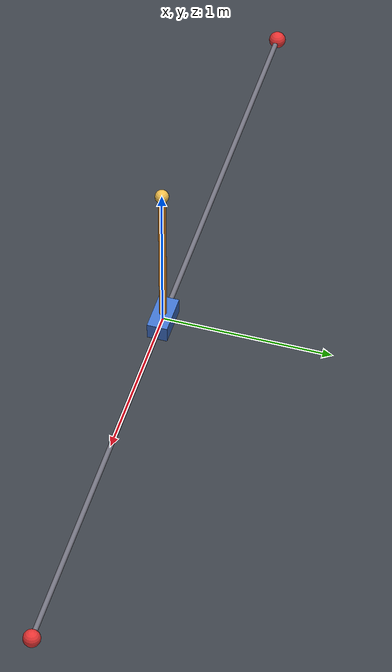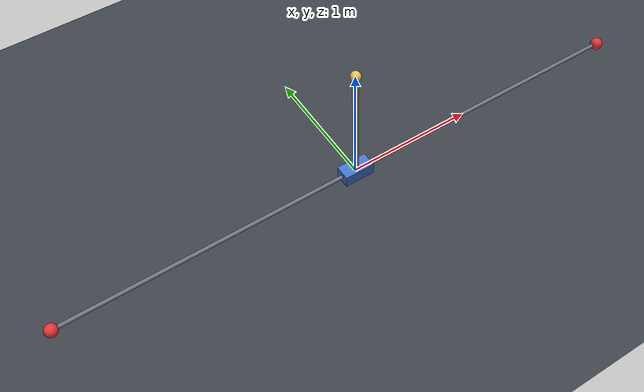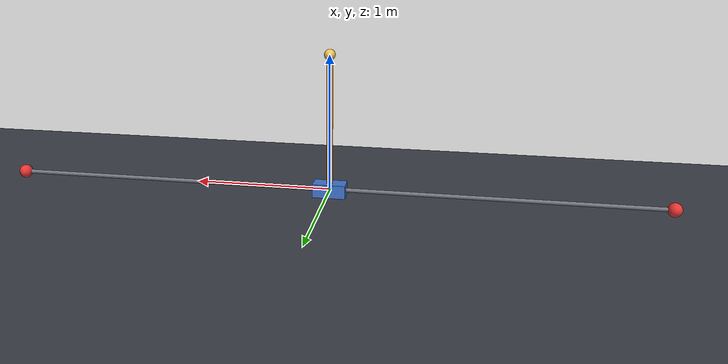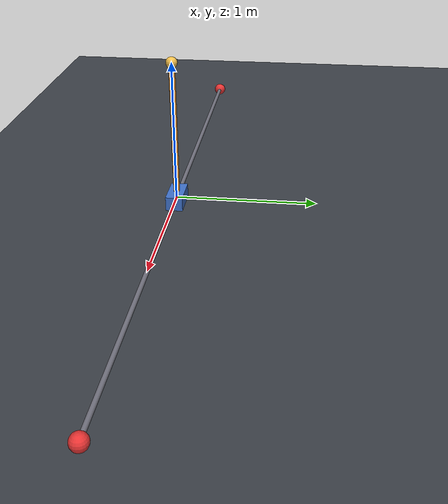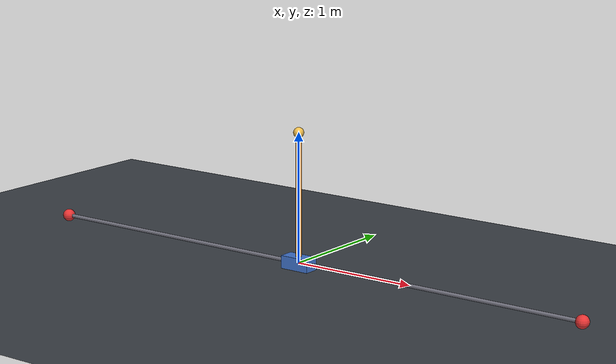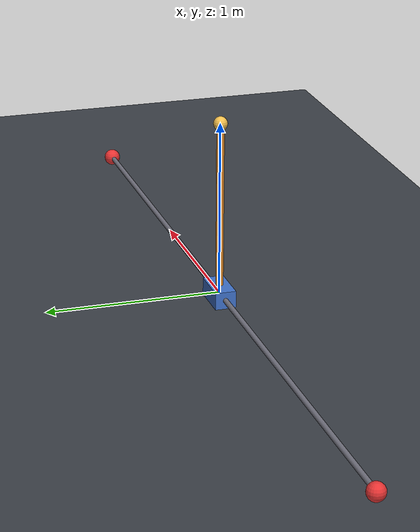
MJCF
<mujoco model="cartpole-continuous">
  <compiler inertiafromgeom="false" angle="radian"/>
  <option timestep="0.02" gravity="0 0 -9.8" integrator="Euler"
          density="0" viscosity="0"/>
  <visual>
    <headlight ambient="0.4 0.4 0.4" diffuse="0.7 0.7 0.7"/>
    <global offwidth="960" offheight="640"/>
  </visual>
  <asset>
    <texture name="grid" type="2d" builtin="checker" rgb1="0.2 0.22 0.25"
             rgb2="0.26 0.28 0.31" width="300" height="300"/>
    <material name="grid" texture="grid" texrepeat="18 12" reflectance="0.05"/>
  </asset>
  <worldbody>
    <camera name="side" pos="0 -5.2 1.15" xyaxes="1 0 0 0 0.22 0.975"/>
    <light pos="0 -1.5 3" dir="0 0.4 -1" diffuse="0.8 0.8 0.8"/>
    <geom name="floor" type="plane" pos="0 0 -0.35" size="20 12 0.1"
          material="grid" contype="0" conaffinity="0"/>
    <geom name="rail" type="capsule" fromto="-2.4 0 0 2.4 0 0" size="0.015"
          rgba="0.45 0.45 0.5 1" contype="0" conaffinity="0"/>
    <site name="limit_left"  pos="-2.4 0 0" size="0.05" rgba="0.9 0.2 0.2 1"/>
    <site name="limit_right" pos=" 2.4 0 0" size="0.05" rgba="0.9 0.2 0.2 1"/>
    <body name="cart" pos="0 0 0">
      <inertial pos="0 0 0" mass="1.0" diaginertia="1e-9 1e-9 1e-9"/>
      <joint name="slider" type="slide" axis="1 0 0" damping="0" armature="0"
             frictionloss="0"/>
      <geom name="cart" type="box" size="0.12 0.06 0.05" rgba="0.25 0.45 0.8 1"
            contype="0" conaffinity="0" mass="0"/>
      <body name="pole" pos="0 0 0">
        <inertial pos="0 0 0.5" mass="0.1"
                  diaginertia="0.008333333333333333 0.008333333333333333 1e-9"/>
        <joint name="hinge" type="hinge" axis="0 1 0" damping="0" armature="0"
               frictionloss="0"/>
        <geom name="pole" type="capsule" fromto="0 0 0 0 0 1.0" size="0.022"
              rgba="0.9 0.55 0.15 1" contype="0" conaffinity="0" mass="0"/>
        <site name="tip" pos="0 0 1.0" size="0.04" rgba="0.95 0.75 0.3 1"/>
      </body>
    </body>
  </worldbody>
  <actuator>
    <motor joint="slider" gear="10" ctrlrange="-1 1" ctrllimited="true"/>
  </actuator>
</mujoco>
